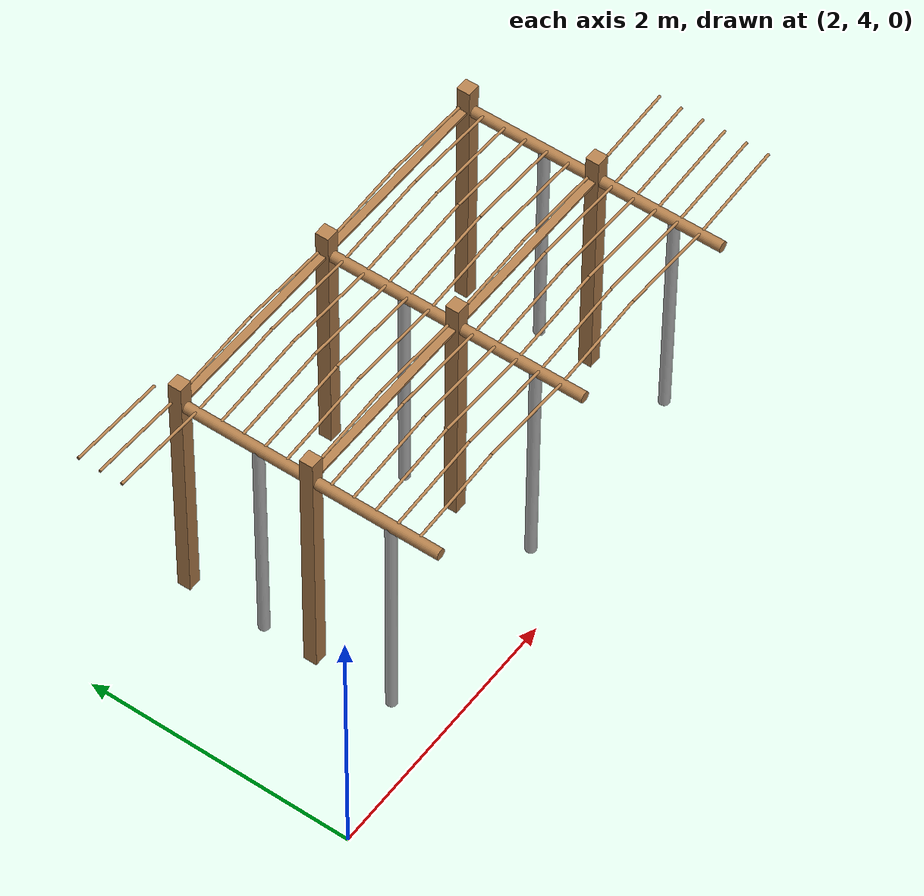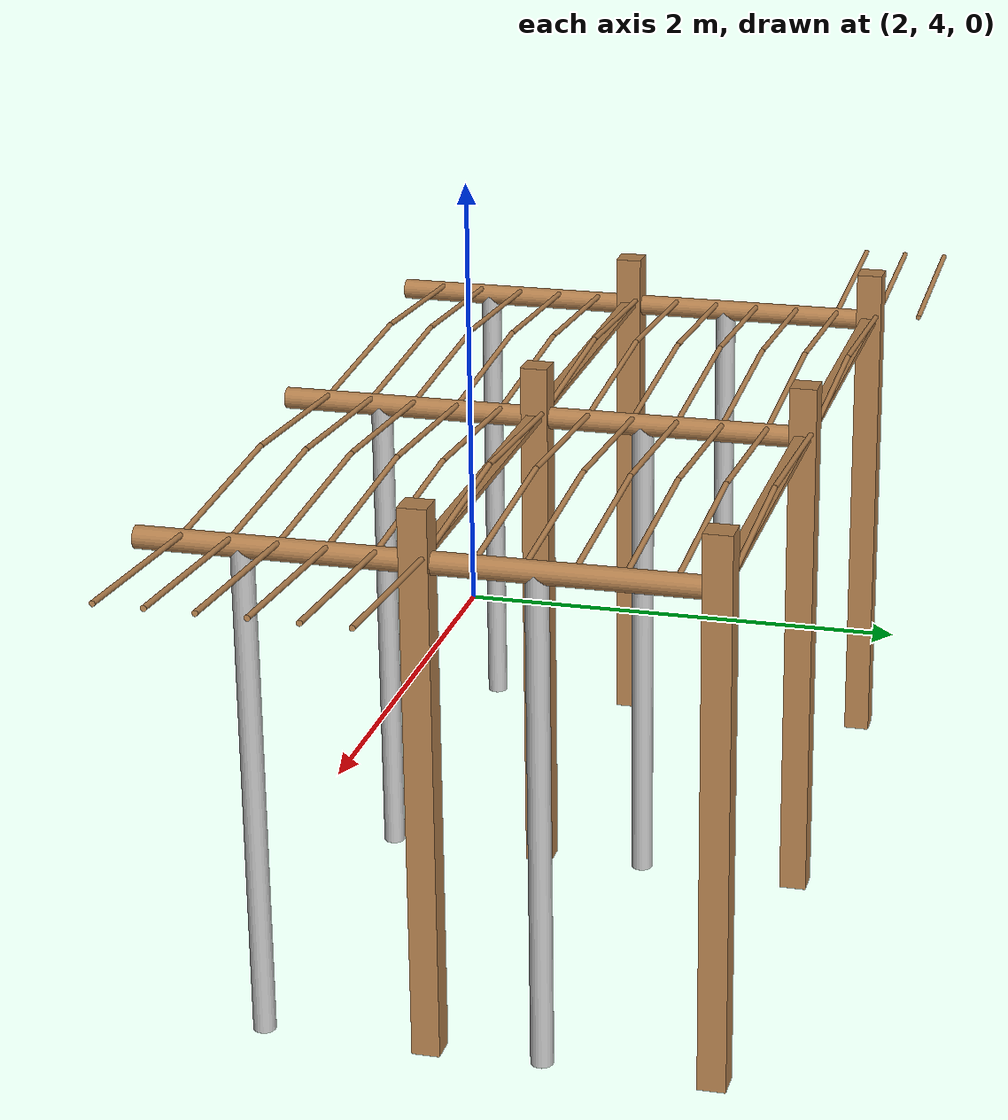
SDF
<sdf version="1.4">
 <model name="pergola">
  <include><name>post_27</name><pose>3.0 5.0 0 0 0 0</pose><uri>model://post</uri></include>
  <include><name>post_28</name><pose>3.0 6.0 0 0 0 0</pose><uri>model://post</uri></include>
  <include><name>post_38</name><pose>4.5 5.0 0 0 0 0</pose><uri>model://post</uri></include>
  <include><name>post_39</name><pose>4.5 6.0 0 0 0 0</pose><uri>model://post</uri></include>
  <include><name>post_49</name><pose>6.0 5.0 0 0 0 0</pose><uri>model://post</uri></include>
  <include><name>post_50</name><pose>6.0 6.0 0 0 0 0</pose><uri>model://post</uri></include>
  <link name="beam_27">
   <pose>3.75 5.0 1.81 0 0 0</pose>
   <collision name="collision"><geometry><box><size>1.5 0.06 0.02</size></box></geometry></collision>
   <visual name="visual">
    <geometry><box><size>1.5 0.06 0.02</size></box></geometry>
    <material><script><name>Gazebo/Wood</name></script></material>
   </visual>
   <inertial>
    <mass>5</mass>
    <inertia>
     <ixx>0.0016666666666666668</ixx>
     <ixy>0.0</ixy>
     <ixz>0.0</ixz>
     <iyy>0.9390000000000001</iyy>
     <iyz>0.0</iyz>
     <izz>0.9376666666666665</izz>
    </inertia>
   </inertial>
  </link>
  <link name="beam_28">
   <pose>3.75 6.0 1.81 0 0 0</pose>
   <collision name="collision"><geometry><box><size>1.5 0.06 0.02</size></box></geometry></collision>
   <visual name="visual">
    <geometry><box><size>1.5 0.06 0.02</size></box></geometry>
    <material><script><name>Gazebo/Wood</name></script></material>
   </visual>
   <inertial>
    <mass>5</mass>
    <inertia>
     <ixx>0.0016666666666666668</ixx>
     <ixy>0.0</ixy>
     <ixz>0.0</ixz>
     <iyy>0.9390000000000001</iyy>
     <iyz>0.0</iyz>
     <izz>0.9376666666666665</izz>
    </inertia>
   </inertial>
  </link>
  <link name="beam_38">
   <pose>5.25 5.0 1.81 0 0 0</pose>
   <collision name="collision"><geometry><box><size>1.5 0.06 0.02</size></box></geometry></collision>
   <visual name="visual">
    <geometry><box><size>1.5 0.06 0.02</size></box></geometry>
    <material><script><name>Gazebo/Wood</name></script></material>
   </visual>
   <inertial>
    <mass>5</mass>
    <inertia>
     <ixx>0.0016666666666666668</ixx>
     <ixy>0.0</ixy>
     <ixz>0.0</ixz>
     <iyy>0.9390000000000001</iyy>
     <iyz>0.0</iyz>
     <izz>0.9376666666666665</izz>
    </inertia>
   </inertial>
  </link>
  <link name="beam_39">
   <pose>5.25 6.0 1.81 0 0 0</pose>
   <collision name="collision"><geometry><box><size>1.5 0.06 0.02</size></box></geometry></collision>
   <visual name="visual">
    <geometry><box><size>1.5 0.06 0.02</size></box></geometry>
    <material><script><name>Gazebo/Wood</name></script></material>
   </visual>
   <inertial>
    <mass>5</mass>
    <inertia>
     <ixx>0.0016666666666666668</ixx>
     <ixy>0.0</ixy>
     <ixz>0.0</ixz>
     <iyy>0.9390000000000001</iyy>
     <iyz>0.0</iyz>
     <izz>0.9376666666666665</izz>
    </inertia>
   </inertial>
  </link>
  <include><name>tree_24</name><pose>3.0 4.4 0 0 0 0</pose><uri>model://tree_trunk</uri></include>
  <include><name>tree_25</name><pose>3.0 5.4 0 0 0 0</pose><uri>model://tree_trunk</uri></include>
  <include><name>tree_34</name><pose>4.5 4.4 0 0 0 0</pose><uri>model://tree_trunk</uri></include>
  <include><name>tree_35</name><pose>4.5 5.4 0 0 0 0</pose><uri>model://tree_trunk</uri></include>
  <include><name>tree_44</name><pose>6.0 4.4 0 0 0 0</pose><uri>model://tree_trunk</uri></include>
  <include><name>tree_45</name><pose>6.0 5.4 0 0 0 0</pose><uri>model://tree_trunk</uri></include>
  <link name="baseBranch_24">
   <pose>3.0 4.5 1.8 1.5707963267948966 0 0</pose>
   <collision name="collision">
    <geometry><cylinder><radius>0.04</radius><length>0.94</length></cylinder></geometry>
   </collision>
   <visual name="visual">
    <geometry><cylinder><radius>0.04</radius><length>0.94</length></cylinder></geometry>
    <material><script><name>Gazebo/WoodFloor</name></script></material>
   </visual>
   <inertial>
    <mass>10</mass>
    <inertia>
     <ixx>0.7403333333333334</ixx>
     <ixy>0.0</ixy>
     <ixz>0.0</ixz>
     <iyy>0.7403333333333334</iyy>
     <iyz>0.0</iyz>
     <izz>0.008</izz>
    </inertia>
   </inertial>
  </link>
  <link name="baseBranch_25">
   <pose>3.0 5.5 1.8 1.5707963267948966 0 0</pose>
   <collision name="collision">
    <geometry><cylinder><radius>0.04</radius><length>0.94</length></cylinder></geometry>
   </collision>
   <visual name="visual">
    <geometry><cylinder><radius>0.04</radius><length>0.94</length></cylinder></geometry>
    <material><script><name>Gazebo/WoodFloor</name></script></material>
   </visual>
   <inertial>
    <mass>10</mass>
    <inertia>
     <ixx>0.7403333333333334</ixx>
     <ixy>0.0</ixy>
     <ixz>0.0</ixz>
     <iyy>0.7403333333333334</iyy>
     <iyz>0.0</iyz>
     <izz>0.008</izz>
    </inertia>
   </inertial>
  </link>
  <link name="baseBranch_34">
   <pose>4.5 4.5 1.8 1.5707963267948966 0 0</pose>
   <collision name="collision">
    <geometry><cylinder><radius>0.04</radius><length>0.94</length></cylinder></geometry>
   </collision>
   <visual name="visual">
    <geometry><cylinder><radius>0.04</radius><length>0.94</length></cylinder></geometry>
    <material><script><name>Gazebo/WoodFloor</name></script></material>
   </visual>
   <inertial>
    <mass>10</mass>
    <inertia>
     <ixx>0.7403333333333334</ixx>
     <ixy>0.0</ixy>
     <ixz>0.0</ixz>
     <iyy>0.7403333333333334</iyy>
     <iyz>0.0</iyz>
     <izz>0.008</izz>
    </inertia>
   </inertial>
  </link>
  <link name="baseBranch_35">
   <pose>4.5 5.5 1.8 1.5707963267948966 0 0</pose>
   <collision name="collision">
    <geometry><cylinder><radius>0.04</radius><length>0.94</length></cylinder></geometry>
   </collision>
   <visual name="visual">
    <geometry><cylinder><radius>0.04</radius><length>0.94</length></cylinder></geometry>
    <material><script><name>Gazebo/WoodFloor</name></script></material>
   </visual>
   <inertial>
    <mass>10</mass>
    <inertia>
     <ixx>0.7403333333333334</ixx>
     <ixy>0.0</ixy>
     <ixz>0.0</ixz>
     <iyy>0.7403333333333334</iyy>
     <iyz>0.0</iyz>
     <izz>0.008</izz>
    </inertia>
   </inertial>
  </link>
  <link name="baseBranch_44">
   <pose>6.0 4.5 1.8 1.5707963267948966 0 0</pose>
   <collision name="collision">
    <geometry><cylinder><radius>0.04</radius><length>0.94</length></cylinder></geometry>
   </collision>
   <visual name="visual">
    <geometry><cylinder><radius>0.04</radius><length>0.94</length></cylinder></geometry>
    <material><script><name>Gazebo/WoodFloor</name></script></material>
   </visual>
   <inertial>
    <mass>10</mass>
    <inertia>
     <ixx>0.7403333333333334</ixx>
     <ixy>0.0</ixy>
     <ixz>0.0</ixz>
     <iyy>0.7403333333333334</iyy>
     <iyz>0.0</iyz>
     <izz>0.008</izz>
    </inertia>
   </inertial>
  </link>
  <link name="baseBranch_45">
   <pose>6.0 5.5 1.8 1.5707963267948966 0 0</pose>
   <collision name="collision">
    <geometry><cylinder><radius>0.04</radius><length>0.94</length></cylinder></geometry>
   </collision>
   <visual name="visual">
    <geometry><cylinder><radius>0.04</radius><length>0.94</length></cylinder></geometry>
    <material><script><name>Gazebo/WoodFloor</name></script></material>
   </visual>
   <inertial>
    <mass>10</mass>
    <inertia>
     <ixx>0.7403333333333334</ixx>
     <ixy>0.0</ixy>
     <ixz>0.0</ixz>
     <iyy>0.7403333333333334</iyy>
     <iyz>0.0</iyz>
     <izz>0.008</izz>
    </inertia>
   </inertial>
  </link>
  <link name="vine_191">
   <pose>2.625 5.863333333333333 1.85 0 -1.5042281630190728 0</pose>
   <collision name="collision">
    <geometry><cylinder><radius>0.01</radius><length>0.7516648189186453</length></cylinder></geometry>
   </collision>
   <visual name="visual">
    <geometry><cylinder><radius>0.01</radius><length>0.7516648189186453</length></cylinder></geometry>
    <material><script><name>Gazebo/WoodFloor</name></script></material>
   </visual>
   <inertial>
    <mass>5</mass>
    <inertia>
     <ixx>0.23554166666666657</ixx>
     <ixy>0.0</ixy>
     <ixz>0.0</ixz>
     <iyy>0.23554166666666657</iyy>
     <iyz>0.0</iyz>
     <izz>0.00025</izz>
    </inertia>
   </inertial>
  </link>
  <link name="vine_193">
   <pose>2.625 6.03 1.85 0 -1.5042281630190728 0</pose>
   <collision name="collision">
    <geometry><cylinder><radius>0.01</radius><length>0.7516648189186453</length></cylinder></geometry>
   </collision>
   <visual name="visual">
    <geometry><cylinder><radius>0.01</radius><length>0.7516648189186453</length></cylinder></geometry>
    <material><script><name>Gazebo/WoodFloor</name></script></material>
   </visual>
   <inertial>
    <mass>5</mass>
    <inertia>
     <ixx>0.23554166666666657</ixx>
     <ixy>0.0</ixy>
     <ixz>0.0</ixz>
     <iyy>0.23554166666666657</iyy>
     <iyz>0.0</iyz>
     <izz>0.00025</izz>
    </inertia>
   </inertial>
  </link>
  <link name="vine_195">
   <pose>2.625 6.196666666666666 1.85 0 -1.5042281630190728 0</pose>
   <collision name="collision">
    <geometry><cylinder><radius>0.01</radius><length>0.7516648189186453</length></cylinder></geometry>
   </collision>
   <visual name="visual">
    <geometry><cylinder><radius>0.01</radius><length>0.7516648189186453</length></cylinder></geometry>
    <material><script><name>Gazebo/WoodFloor</name></script></material>
   </visual>
   <inertial>
    <mass>5</mass>
    <inertia>
     <ixx>0.23554166666666657</ixx>
     <ixy>0.0</ixy>
     <ixz>0.0</ixz>
     <iyy>0.23554166666666657</iyy>
     <iyz>0.0</iyz>
     <izz>0.00025</izz>
    </inertia>
   </inertial>
  </link>
  <link name="vine_290">
   <pose>3.375 4.196666666666666 1.85 0 1.5042281630190728 0</pose>
   <collision name="collision">
    <geometry><cylinder><radius>0.01</radius><length>0.7516648189186453</length></cylinder></geometry>
   </collision>
   <visual name="visual">
    <geometry><cylinder><radius>0.01</radius><length>0.7516648189186453</length></cylinder></geometry>
    <material><script><name>Gazebo/WoodFloor</name></script></material>
   </visual>
   <inertial>
    <mass>5</mass>
    <inertia>
     <ixx>0.23554166666666657</ixx>
     <ixy>0.0</ixy>
     <ixz>0.0</ixz>
     <iyy>0.23554166666666657</iyy>
     <iyz>0.0</iyz>
     <izz>0.00025</izz>
    </inertia>
   </inertial>
  </link>
  <link name="vine_291">
   <pose>4.125 4.196666666666666 1.85 0 -1.5042281630190728 0</pose>
   <collision name="collision">
    <geometry><cylinder><radius>0.01</radius><length>0.7516648189186453</length></cylinder></geometry>
   </collision>
   <visual name="visual">
    <geometry><cylinder><radius>0.01</radius><length>0.7516648189186453</length></cylinder></geometry>
    <material><script><name>Gazebo/WoodFloor</name></script></material>
   </visual>
   <inertial>
    <mass>5</mass>
    <inertia>
     <ixx>0.23554166666666657</ixx>
     <ixy>0.0</ixy>
     <ixz>0.0</ixz>
     <iyy>0.23554166666666657</iyy>
     <iyz>0.0</iyz>
     <izz>0.00025</izz>
    </inertia>
   </inertial>
  </link>
  <link name="vine_292">
   <pose>3.375 4.363333333333333 1.85 0 1.5042281630190728 0</pose>
   <collision name="collision">
    <geometry><cylinder><radius>0.01</radius><length>0.7516648189186453</length></cylinder></geometry>
   </collision>
   <visual name="visual">
    <geometry><cylinder><radius>0.01</radius><length>0.7516648189186453</length></cylinder></geometry>
    <material><script><name>Gazebo/WoodFloor</name></script></material>
   </visual>
   <inertial>
    <mass>5</mass>
    <inertia>
     <ixx>0.23554166666666657</ixx>
     <ixy>0.0</ixy>
     <ixz>0.0</ixz>
     <iyy>0.23554166666666657</iyy>
     <iyz>0.0</iyz>
     <izz>0.00025</izz>
    </inertia>
   </inertial>
  </link>
  <link name="vine_293">
   <pose>4.125 4.363333333333333 1.85 0 -1.5042281630190728 0</pose>
   <collision name="collision">
    <geometry><cylinder><radius>0.01</radius><length>0.7516648189186453</length></cylinder></geometry>
   </collision>
   <visual name="visual">
    <geometry><cylinder><radius>0.01</radius><length>0.7516648189186453</length></cylinder></geometry>
    <material><script><name>Gazebo/WoodFloor</name></script></material>
   </visual>
   <inertial>
    <mass>5</mass>
    <inertia>
     <ixx>0.23554166666666657</ixx>
     <ixy>0.0</ixy>
     <ixz>0.0</ixz>
     <iyy>0.23554166666666657</iyy>
     <iyz>0.0</iyz>
     <izz>0.00025</izz>
    </inertia>
   </inertial>
  </link>
  <link name="vine_294">
   <pose>3.375 4.53 1.85 0 1.5042281630190728 0</pose>
   <collision name="collision">
    <geometry><cylinder><radius>0.01</radius><length>0.7516648189186453</length></cylinder></geometry>
   </collision>
   <visual name="visual">
    <geometry><cylinder><radius>0.01</radius><length>0.7516648189186453</length></cylinder></geometry>
    <material><script><name>Gazebo/WoodFloor</name></script></material>
   </visual>
   <inertial>
    <mass>5</mass>
    <inertia>
     <ixx>0.23554166666666657</ixx>
     <ixy>0.0</ixy>
     <ixz>0.0</ixz>
     <iyy>0.23554166666666657</iyy>
     <iyz>0.0</iyz>
     <izz>0.00025</izz>
    </inertia>
   </inertial>
  </link>
  <link name="vine_295">
   <pose>4.125 4.53 1.85 0 -1.5042281630190728 0</pose>
   <collision name="collision">
    <geometry><cylinder><radius>0.01</radius><length>0.7516648189186453</length></cylinder></geometry>
   </collision>
   <visual name="visual">
    <geometry><cylinder><radius>0.01</radius><length>0.7516648189186453</length></cylinder></geometry>
    <material><script><name>Gazebo/WoodFloor</name></script></material>
   </visual>
   <inertial>
    <mass>5</mass>
    <inertia>
     <ixx>0.23554166666666657</ixx>
     <ixy>0.0</ixy>
     <ixz>0.0</ixz>
     <iyy>0.23554166666666657</iyy>
     <iyz>0.0</iyz>
     <izz>0.00025</izz>
    </inertia>
   </inertial>
  </link>
  <link name="vine_296">
   <pose>3.375 4.696666666666666 1.85 0 1.5042281630190728 0</pose>
   <collision name="collision">
    <geometry><cylinder><radius>0.01</radius><length>0.7516648189186453</length></cylinder></geometry>
   </collision>
   <visual name="visual">
    <geometry><cylinder><radius>0.01</radius><length>0.7516648189186453</length></cylinder></geometry>
    <material><script><name>Gazebo/WoodFloor</name></script></material>
   </visual>
   <inertial>
    <mass>5</mass>
    <inertia>
     <ixx>0.23554166666666657</ixx>
     <ixy>0.0</ixy>
     <ixz>0.0</ixz>
     <iyy>0.23554166666666657</iyy>
     <iyz>0.0</iyz>
     <izz>0.00025</izz>
    </inertia>
   </inertial>
  </link>
  <link name="vine_297">
   <pose>4.125 4.696666666666666 1.85 0 -1.5042281630190728 0</pose>
   <collision name="collision">
    <geometry><cylinder><radius>0.01</radius><length>0.7516648189186453</length></cylinder></geometry>
   </collision>
   <visual name="visual">
    <geometry><cylinder><radius>0.01</radius><length>0.7516648189186453</length></cylinder></geometry>
    <material><script><name>Gazebo/WoodFloor</name></script></material>
   </visual>
   <inertial>
    <mass>5</mass>
    <inertia>
     <ixx>0.23554166666666657</ixx>
     <ixy>0.0</ixy>
     <ixz>0.0</ixz>
     <iyy>0.23554166666666657</iyy>
     <iyz>0.0</iyz>
     <izz>0.00025</izz>
    </inertia>
   </inertial>
  </link>
  <link name="vine_298">
   <pose>3.375 4.863333333333333 1.85 0 1.5042281630190728 0</pose>
   <collision name="collision">
    <geometry><cylinder><radius>0.01</radius><length>0.7516648189186453</length></cylinder></geometry>
   </collision>
   <visual name="visual">
    <geometry><cylinder><radius>0.01</radius><length>0.7516648189186453</length></cylinder></geometry>
    <material><script><name>Gazebo/WoodFloor</name></script></material>
   </visual>
   <inertial>
    <mass>5</mass>
    <inertia>
     <ixx>0.23554166666666657</ixx>
     <ixy>0.0</ixy>
     <ixz>0.0</ixz>
     <iyy>0.23554166666666657</iyy>
     <iyz>0.0</iyz>
     <izz>0.00025</izz>
    </inertia>
   </inertial>
  </link>
  <link name="vine_299">
   <pose>4.125 4.863333333333333 1.85 0 -1.5042281630190728 0</pose>
   <collision name="collision">
    <geometry><cylinder><radius>0.01</radius><length>0.7516648189186453</length></cylinder></geometry>
   </collision>
   <visual name="visual">
    <geometry><cylinder><radius>0.01</radius><length>0.7516648189186453</length></cylinder></geometry>
    <material><script><name>Gazebo/WoodFloor</name></script></material>
   </visual>
   <inertial>
    <mass>5</mass>
    <inertia>
     <ixx>0.23554166666666657</ixx>
     <ixy>0.0</ixy>
     <ixz>0.0</ixz>
     <iyy>0.23554166666666657</iyy>
     <iyz>0.0</iyz>
     <izz>0.00025</izz>
    </inertia>
   </inertial>
  </link>
  <link name="vine_300">
   <pose>3.375 5.03 1.85 0 1.5042281630190728 0</pose>
   <collision name="collision">
    <geometry><cylinder><radius>0.01</radius><length>0.7516648189186453</length></cylinder></geometry>
   </collision>
   <visual name="visual">
    <geometry><cylinder><radius>0.01</radius><length>0.7516648189186453</length></cylinder></geometry>
    <material><script><name>Gazebo/WoodFloor</name></script></material>
   </visual>
   <inertial>
    <mass>5</mass>
    <inertia>
     <ixx>0.23554166666666657</ixx>
     <ixy>0.0</ixy>
     <ixz>0.0</ixz>
     <iyy>0.23554166666666657</iyy>
     <iyz>0.0</iyz>
     <izz>0.00025</izz>
    </inertia>
   </inertial>
  </link>
  <link name="vine_301">
   <pose>4.125 5.03 1.85 0 -1.5042281630190728 0</pose>
   <collision name="collision">
    <geometry><cylinder><radius>0.01</radius><length>0.7516648189186453</length></cylinder></geometry>
   </collision>
   <visual name="visual">
    <geometry><cylinder><radius>0.01</radius><length>0.7516648189186453</length></cylinder></geometry>
    <material><script><name>Gazebo/WoodFloor</name></script></material>
   </visual>
   <inertial>
    <mass>5</mass>
    <inertia>
     <ixx>0.23554166666666657</ixx>
     <ixy>0.0</ixy>
     <ixz>0.0</ixz>
     <iyy>0.23554166666666657</iyy>
     <iyz>0.0</iyz>
     <izz>0.00025</izz>
    </inertia>
   </inertial>
  </link>
  <link name="vine_302">
   <pose>3.375 5.196666666666666 1.85 0 1.5042281630190728 0</pose>
   <collision name="collision">
    <geometry><cylinder><radius>0.01</radius><length>0.7516648189186453</length></cylinder></geometry>
   </collision>
   <visual name="visual">
    <geometry><cylinder><radius>0.01</radius><length>0.7516648189186453</length></cylinder></geometry>
    <material><script><name>Gazebo/WoodFloor</name></script></material>
   </visual>
   <inertial>
    <mass>5</mass>
    <inertia>
     <ixx>0.23554166666666657</ixx>
     <ixy>0.0</ixy>
     <ixz>0.0</ixz>
     <iyy>0.23554166666666657</iyy>
     <iyz>0.0</iyz>
     <izz>0.00025</izz>
    </inertia>
   </inertial>
  </link>
  <link name="vine_303">
   <pose>4.125 5.196666666666666 1.85 0 -1.5042281630190728 0</pose>
   <collision name="collision">
    <geometry><cylinder><radius>0.01</radius><length>0.7516648189186453</length></cylinder></geometry>
   </collision>
   <visual name="visual">
    <geometry><cylinder><radius>0.01</radius><length>0.7516648189186453</length></cylinder></geometry>
    <material><script><name>Gazebo/WoodFloor</name></script></material>
   </visual>
   <inertial>
    <mass>5</mass>
    <inertia>
     <ixx>0.23554166666666657</ixx>
     <ixy>0.0</ixy>
     <ixz>0.0</ixz>
     <iyy>0.23554166666666657</iyy>
     <iyz>0.0</iyz>
     <izz>0.00025</izz>
    </inertia>
   </inertial>
  </link>
  <link name="vine_304">
   <pose>3.375 5.363333333333333 1.85 0 1.5042281630190728 0</pose>
   <collision name="collision">
    <geometry><cylinder><radius>0.01</radius><length>0.7516648189186453</length></cylinder></geometry>
   </collision>
   <visual name="visual">
    <geometry><cylinder><radius>0.01</radius><length>0.7516648189186453</length></cylinder></geometry>
    <material><script><name>Gazebo/WoodFloor</name></script></material>
   </visual>
   <inertial>
    <mass>5</mass>
    <inertia>
     <ixx>0.23554166666666657</ixx>
     <ixy>0.0</ixy>
     <ixz>0.0</ixz>
     <iyy>0.23554166666666657</iyy>
     <iyz>0.0</iyz>
     <izz>0.00025</izz>
    </inertia>
   </inertial>
  </link>
  <link name="vine_305">
   <pose>4.125 5.363333333333333 1.85 0 -1.5042281630190728 0</pose>
   <collision name="collision">
    <geometry><cylinder><radius>0.01</radius><length>0.7516648189186453</length></cylinder></geometry>
   </collision>
   <visual name="visual">
    <geometry><cylinder><radius>0.01</radius><length>0.7516648189186453</length></cylinder></geometry>
    <material><script><name>Gazebo/WoodFloor</name></script></material>
   </visual>
   <inertial>
    <mass>5</mass>
    <inertia>
     <ixx>0.23554166666666657</ixx>
     <ixy>0.0</ixy>
     <ixz>0.0</ixz>
     <iyy>0.23554166666666657</iyy>
     <iyz>0.0</iyz>
     <izz>0.00025</izz>
    </inertia>
   </inertial>
  </link>
  <link name="vine_306">
   <pose>3.375 5.53 1.85 0 1.5042281630190728 0</pose>
   <collision name="collision">
    <geometry><cylinder><radius>0.01</radius><length>0.7516648189186453</length></cylinder></geometry>
   </collision>
   <visual name="visual">
    <geometry><cylinder><radius>0.01</radius><length>0.7516648189186453</length></cylinder></geometry>
    <material><script><name>Gazebo/WoodFloor</name></script></material>
   </visual>
   <inertial>
    <mass>5</mass>
    <inertia>
     <ixx>0.23554166666666657</ixx>
     <ixy>0.0</ixy>
     <ixz>0.0</ixz>
     <iyy>0.23554166666666657</iyy>
     <iyz>0.0</iyz>
     <izz>0.00025</izz>
    </inertia>
   </inertial>
  </link>
  <link name="vine_307">
   <pose>4.125 5.53 1.85 0 -1.5042281630190728 0</pose>
   <collision name="collision">
    <geometry><cylinder><radius>0.01</radius><length>0.7516648189186453</length></cylinder></geometry>
   </collision>
   <visual name="visual">
    <geometry><cylinder><radius>0.01</radius><length>0.7516648189186453</length></cylinder></geometry>
    <material><script><name>Gazebo/WoodFloor</name></script></material>
   </visual>
   <inertial>
    <mass>5</mass>
    <inertia>
     <ixx>0.23554166666666657</ixx>
     <ixy>0.0</ixy>
     <ixz>0.0</ixz>
     <iyy>0.23554166666666657</iyy>
     <iyz>0.0</iyz>
     <izz>0.00025</izz>
    </inertia>
   </inertial>
  </link>
  <link name="vine_308">
   <pose>3.375 5.696666666666666 1.85 0 1.5042281630190728 0</pose>
   <collision name="collision">
    <geometry><cylinder><radius>0.01</radius><length>0.7516648189186453</length></cylinder></geometry>
   </collision>
   <visual name="visual">
    <geometry><cylinder><radius>0.01</radius><length>0.7516648189186453</length></cylinder></geometry>
    <material><script><name>Gazebo/WoodFloor</name></script></material>
   </visual>
   <inertial>
    <mass>5</mass>
    <inertia>
     <ixx>0.23554166666666657</ixx>
     <ixy>0.0</ixy>
     <ixz>0.0</ixz>
     <iyy>0.23554166666666657</iyy>
     <iyz>0.0</iyz>
     <izz>0.00025</izz>
    </inertia>
   </inertial>
  </link>
  <link name="vine_309">
   <pose>4.125 5.696666666666666 1.85 0 -1.5042281630190728 0</pose>
   <collision name="collision">
    <geometry><cylinder><radius>0.01</radius><length>0.7516648189186453</length></cylinder></geometry>
   </collision>
   <visual name="visual">
    <geometry><cylinder><radius>0.01</radius><length>0.7516648189186453</length></cylinder></geometry>
    <material><script><name>Gazebo/WoodFloor</name></script></material>
   </visual>
   <inertial>
    <mass>5</mass>
    <inertia>
     <ixx>0.23554166666666657</ixx>
     <ixy>0.0</ixy>
     <ixz>0.0</ixz>
     <iyy>0.23554166666666657</iyy>
     <iyz>0.0</iyz>
     <izz>0.00025</izz>
    </inertia>
   </inertial>
  </link>
  <link name="vine_310">
   <pose>3.375 5.863333333333333 1.85 0 1.5042281630190728 0</pose>
   <collision name="collision">
    <geometry><cylinder><radius>0.01</radius><length>0.7516648189186453</length></cylinder></geometry>
   </collision>
   <visual name="visual">
    <geometry><cylinder><radius>0.01</radius><length>0.7516648189186453</length></cylinder></geometry>
    <material><script><name>Gazebo/WoodFloor</name></script></material>
   </visual>
   <inertial>
    <mass>5</mass>
    <inertia>
     <ixx>0.23554166666666657</ixx>
     <ixy>0.0</ixy>
     <ixz>0.0</ixz>
     <iyy>0.23554166666666657</iyy>
     <iyz>0.0</iyz>
     <izz>0.00025</izz>
    </inertia>
   </inertial>
  </link>
  <link name="vine_311">
   <pose>4.125 5.863333333333333 1.85 0 -1.5042281630190728 0</pose>
   <collision name="collision">
    <geometry><cylinder><radius>0.01</radius><length>0.7516648189186453</length></cylinder></geometry>
   </collision>
   <visual name="visual">
    <geometry><cylinder><radius>0.01</radius><length>0.7516648189186453</length></cylinder></geometry>
    <material><script><name>Gazebo/WoodFloor</name></script></material>
   </visual>
   <inertial>
    <mass>5</mass>
    <inertia>
     <ixx>0.23554166666666657</ixx>
     <ixy>0.0</ixy>
     <ixz>0.0</ixz>
     <iyy>0.23554166666666657</iyy>
     <iyz>0.0</iyz>
     <izz>0.00025</izz>
    </inertia>
   </inertial>
  </link>
  <link name="vine_312">
   <pose>3.375 6.03 1.85 0 1.5042281630190728 0</pose>
   <collision name="collision">
    <geometry><cylinder><radius>0.01</radius><length>0.7516648189186453</length></cylinder></geometry>
   </collision>
   <visual name="visual">
    <geometry><cylinder><radius>0.01</radius><length>0.7516648189186453</length></cylinder></geometry>
    <material><script><name>Gazebo/WoodFloor</name></script></material>
   </visual>
   <inertial>
    <mass>5</mass>
    <inertia>
     <ixx>0.23554166666666657</ixx>
     <ixy>0.0</ixy>
     <ixz>0.0</ixz>
     <iyy>0.23554166666666657</iyy>
     <iyz>0.0</iyz>
     <izz>0.00025</izz>
    </inertia>
   </inertial>
  </link>
  <link name="vine_313">
   <pose>4.125 6.03 1.85 0 -1.5042281630190728 0</pose>
   <collision name="collision">
    <geometry><cylinder><radius>0.01</radius><length>0.7516648189186453</length></cylinder></geometry>
   </collision>
   <visual name="visual">
    <geometry><cylinder><radius>0.01</radius><length>0.7516648189186453</length></cylinder></geometry>
    <material><script><name>Gazebo/WoodFloor</name></script></material>
   </visual>
   <inertial>
    <mass>5</mass>
    <inertia>
     <ixx>0.23554166666666657</ixx>
     <ixy>0.0</ixy>
     <ixz>0.0</ixz>
     <iyy>0.23554166666666657</iyy>
     <iyz>0.0</iyz>
     <izz>0.00025</izz>
    </inertia>
   </inertial>
  </link>
  <link name="vine_410">
   <pose>4.875 4.196666666666666 1.85 0 1.5042281630190728 0</pose>
   <collision name="collision">
    <geometry><cylinder><radius>0.01</radius><length>0.7516648189186453</length></cylinder></geometry>
   </collision>
   <visual name="visual">
    <geometry><cylinder><radius>0.01</radius><length>0.7516648189186453</length></cylinder></geometry>
    <material><script><name>Gazebo/WoodFloor</name></script></material>
   </visual>
   <inertial>
    <mass>5</mass>
    <inertia>
     <ixx>0.23554166666666657</ixx>
     <ixy>0.0</ixy>
     <ixz>0.0</ixz>
     <iyy>0.23554166666666657</iyy>
     <iyz>0.0</iyz>
     <izz>0.00025</izz>
    </inertia>
   </inertial>
  </link>
  <link name="vine_411">
   <pose>5.625 4.196666666666666 1.85 0 -1.5042281630190728 0</pose>
   <collision name="collision">
    <geometry><cylinder><radius>0.01</radius><length>0.7516648189186453</length></cylinder></geometry>
   </collision>
   <visual name="visual">
    <geometry><cylinder><radius>0.01</radius><length>0.7516648189186453</length></cylinder></geometry>
    <material><script><name>Gazebo/WoodFloor</name></script></material>
   </visual>
   <inertial>
    <mass>5</mass>
    <inertia>
     <ixx>0.23554166666666657</ixx>
     <ixy>0.0</ixy>
     <ixz>0.0</ixz>
     <iyy>0.23554166666666657</iyy>
     <iyz>0.0</iyz>
     <izz>0.00025</izz>
    </inertia>
   </inertial>
  </link>
  <link name="vine_412">
   <pose>4.875 4.363333333333333 1.85 0 1.5042281630190728 0</pose>
   <collision name="collision">
    <geometry><cylinder><radius>0.01</radius><length>0.7516648189186453</length></cylinder></geometry>
   </collision>
   <visual name="visual">
    <geometry><cylinder><radius>0.01</radius><length>0.7516648189186453</length></cylinder></geometry>
    <material><script><name>Gazebo/WoodFloor</name></script></material>
   </visual>
   <inertial>
    <mass>5</mass>
    <inertia>
     <ixx>0.23554166666666657</ixx>
     <ixy>0.0</ixy>
     <ixz>0.0</ixz>
     <iyy>0.23554166666666657</iyy>
     <iyz>0.0</iyz>
     <izz>0.00025</izz>
    </inertia>
   </inertial>
  </link>
  <link name="vine_413">
   <pose>5.625 4.363333333333333 1.85 0 -1.5042281630190728 0</pose>
   <collision name="collision">
    <geometry><cylinder><radius>0.01</radius><length>0.7516648189186453</length></cylinder></geometry>
   </collision>
   <visual name="visual">
    <geometry><cylinder><radius>0.01</radius><length>0.7516648189186453</length></cylinder></geometry>
    <material><script><name>Gazebo/WoodFloor</name></script></material>
   </visual>
   <inertial>
    <mass>5</mass>
    <inertia>
     <ixx>0.23554166666666657</ixx>
     <ixy>0.0</ixy>
     <ixz>0.0</ixz>
     <iyy>0.23554166666666657</iyy>
     <iyz>0.0</iyz>
     <izz>0.00025</izz>
    </inertia>
   </inertial>
  </link>
  <link name="vine_414">
   <pose>4.875 4.53 1.85 0 1.5042281630190728 0</pose>
   <collision name="collision">
    <geometry><cylinder><radius>0.01</radius><length>0.7516648189186453</length></cylinder></geometry>
   </collision>
   <visual name="visual">
    <geometry><cylinder><radius>0.01</radius><length>0.7516648189186453</length></cylinder></geometry>
    <material><script><name>Gazebo/WoodFloor</name></script></material>
   </visual>
   <inertial>
    <mass>5</mass>
    <inertia>
     <ixx>0.23554166666666657</ixx>
     <ixy>0.0</ixy>
     <ixz>0.0</ixz>
     <iyy>0.23554166666666657</iyy>
     <iyz>0.0</iyz>
     <izz>0.00025</izz>
    </inertia>
   </inertial>
  </link>
  <link name="vine_415">
   <pose>5.625 4.53 1.85 0 -1.5042281630190728 0</pose>
   <collision name="collision">
    <geometry><cylinder><radius>0.01</radius><length>0.7516648189186453</length></cylinder></geometry>
   </collision>
   <visual name="visual">
    <geometry><cylinder><radius>0.01</radius><length>0.7516648189186453</length></cylinder></geometry>
    <material><script><name>Gazebo/WoodFloor</name></script></material>
   </visual>
   <inertial>
    <mass>5</mass>
    <inertia>
     <ixx>0.23554166666666657</ixx>
     <ixy>0.0</ixy>
     <ixz>0.0</ixz>
     <iyy>0.23554166666666657</iyy>
     <iyz>0.0</iyz>
     <izz>0.00025</izz>
    </inertia>
   </inertial>
  </link>
  <link name="vine_416">
   <pose>4.875 4.696666666666666 1.85 0 1.5042281630190728 0</pose>
   <collision name="collision">
    <geometry><cylinder><radius>0.01</radius><length>0.7516648189186453</length></cylinder></geometry>
   </collision>
   <visual name="visual">
    <geometry><cylinder><radius>0.01</radius><length>0.7516648189186453</length></cylinder></geometry>
    <material><script><name>Gazebo/WoodFloor</name></script></material>
   </visual>
   <inertial>
    <mass>5</mass>
    <inertia>
     <ixx>0.23554166666666657</ixx>
     <ixy>0.0</ixy>
     <ixz>0.0</ixz>
     <iyy>0.23554166666666657</iyy>
     <iyz>0.0</iyz>
     <izz>0.00025</izz>
    </inertia>
   </inertial>
  </link>
  <link name="vine_417">
   <pose>5.625 4.696666666666666 1.85 0 -1.5042281630190728 0</pose>
   <collision name="collision">
    <geometry><cylinder><radius>0.01</radius><length>0.7516648189186453</length></cylinder></geometry>
   </collision>
   <visual name="visual">
    <geometry><cylinder><radius>0.01</radius><length>0.7516648189186453</length></cylinder></geometry>
    <material><script><name>Gazebo/WoodFloor</name></script></material>
   </visual>
   <inertial>
    <mass>5</mass>
    <inertia>
     <ixx>0.23554166666666657</ixx>
     <ixy>0.0</ixy>
     <ixz>0.0</ixz>
     <iyy>0.23554166666666657</iyy>
     <iyz>0.0</iyz>
     <izz>0.00025</izz>
    </inertia>
   </inertial>
  </link>
  <link name="vine_418">
   <pose>4.875 4.863333333333333 1.85 0 1.5042281630190728 0</pose>
   <collision name="collision">
    <geometry><cylinder><radius>0.01</radius><length>0.7516648189186453</length></cylinder></geometry>
   </collision>
   <visual name="visual">
    <geometry><cylinder><radius>0.01</radius><length>0.7516648189186453</length></cylinder></geometry>
    <material><script><name>Gazebo/WoodFloor</name></script></material>
   </visual>
   <inertial>
    <mass>5</mass>
    <inertia>
     <ixx>0.23554166666666657</ixx>
     <ixy>0.0</ixy>
     <ixz>0.0</ixz>
     <iyy>0.23554166666666657</iyy>
     <iyz>0.0</iyz>
     <izz>0.00025</izz>
    </inertia>
   </inertial>
  </link>
  <link name="vine_419">
   <pose>5.625 4.863333333333333 1.85 0 -1.5042281630190728 0</pose>
   <collision name="collision">
    <geometry><cylinder><radius>0.01</radius><length>0.7516648189186453</length></cylinder></geometry>
   </collision>
   <visual name="visual">
    <geometry><cylinder><radius>0.01</radius><length>0.7516648189186453</length></cylinder></geometry>
    <material><script><name>Gazebo/WoodFloor</name></script></material>
   </visual>
   <inertial>
    <mass>5</mass>
    <inertia>
     <ixx>0.23554166666666657</ixx>
     <ixy>0.0</ixy>
     <ixz>0.0</ixz>
     <iyy>0.23554166666666657</iyy>
     <iyz>0.0</iyz>
     <izz>0.00025</izz>
    </inertia>
   </inertial>
  </link>
  <link name="vine_420">
   <pose>4.875 5.03 1.85 0 1.5042281630190728 0</pose>
   <collision name="collision">
    <geometry><cylinder><radius>0.01</radius><length>0.7516648189186453</length></cylinder></geometry>
   </collision>
   <visual name="visual">
    <geometry><cylinder><radius>0.01</radius><length>0.7516648189186453</length></cylinder></geometry>
    <material><script><name>Gazebo/WoodFloor</name></script></material>
   </visual>
   <inertial>
    <mass>5</mass>
    <inertia>
     <ixx>0.23554166666666657</ixx>
     <ixy>0.0</ixy>
     <ixz>0.0</ixz>
     <iyy>0.23554166666666657</iyy>
     <iyz>0.0</iyz>
     <izz>0.00025</izz>
    </inertia>
   </inertial>
  </link>
  <link name="vine_421">
   <pose>5.625 5.03 1.85 0 -1.5042281630190728 0</pose>
   <collision name="collision">
    <geometry><cylinder><radius>0.01</radius><length>0.7516648189186453</length></cylinder></geometry>
   </collision>
   <visual name="visual">
    <geometry><cylinder><radius>0.01</radius><length>0.7516648189186453</length></cylinder></geometry>
    <material><script><name>Gazebo/WoodFloor</name></script></material>
   </visual>
   <inertial>
    <mass>5</mass>
    <inertia>
     <ixx>0.23554166666666657</ixx>
     <ixy>0.0</ixy>
     <ixz>0.0</ixz>
     <iyy>0.23554166666666657</iyy>
     <iyz>0.0</iyz>
     <izz>0.00025</izz>
    </inertia>
   </inertial>
  </link>
  <link name="vine_422">
   <pose>4.875 5.196666666666666 1.85 0 1.5042281630190728 0</pose>
   <collision name="collision">
    <geometry><cylinder><radius>0.01</radius><length>0.7516648189186453</length></cylinder></geometry>
   </collision>
   <visual name="visual">
    <geometry><cylinder><radius>0.01</radius><length>0.7516648189186453</length></cylinder></geometry>
    <material><script><name>Gazebo/WoodFloor</name></script></material>
   </visual>
   <inertial>
    <mass>5</mass>
    <inertia>
     <ixx>0.23554166666666657</ixx>
     <ixy>0.0</ixy>
     <ixz>0.0</ixz>
     <iyy>0.23554166666666657</iyy>
     <iyz>0.0</iyz>
     <izz>0.00025</izz>
    </inertia>
   </inertial>
  </link>
  <link name="vine_423">
   <pose>5.625 5.196666666666666 1.85 0 -1.5042281630190728 0</pose>
   <collision name="collision">
    <geometry><cylinder><radius>0.01</radius><length>0.7516648189186453</length></cylinder></geometry>
   </collision>
   <visual name="visual">
    <geometry><cylinder><radius>0.01</radius><length>0.7516648189186453</length></cylinder></geometry>
    <material><script><name>Gazebo/WoodFloor</name></script></material>
   </visual>
   <inertial>
    <mass>5</mass>
    <inertia>
     <ixx>0.23554166666666657</ixx>
     <ixy>0.0</ixy>
     <ixz>0.0</ixz>
     <iyy>0.23554166666666657</iyy>
     <iyz>0.0</iyz>
     <izz>0.00025</izz>
    </inertia>
   </inertial>
  </link>
  <link name="vine_424">
   <pose>4.875 5.363333333333333 1.85 0 1.5042281630190728 0</pose>
   <collision name="collision">
    <geometry><cylinder><radius>0.01</radius><length>0.7516648189186453</length></cylinder></geometry>
   </collision>
   <visual name="visual">
    <geometry><cylinder><radius>0.01</radius><length>0.7516648189186453</length></cylinder></geometry>
    <material><script><name>Gazebo/WoodFloor</name></script></material>
   </visual>
   <inertial>
    <mass>5</mass>
    <inertia>
     <ixx>0.23554166666666657</ixx>
     <ixy>0.0</ixy>
     <ixz>0.0</ixz>
     <iyy>0.23554166666666657</iyy>
     <iyz>0.0</iyz>
     <izz>0.00025</izz>
    </inertia>
   </inertial>
  </link>
  <link name="vine_425">
   <pose>5.625 5.363333333333333 1.85 0 -1.5042281630190728 0</pose>
   <collision name="collision">
    <geometry><cylinder><radius>0.01</radius><length>0.7516648189186453</length></cylinder></geometry>
   </collision>
   <visual name="visual">
    <geometry><cylinder><radius>0.01</radius><length>0.7516648189186453</length></cylinder></geometry>
    <material><script><name>Gazebo/WoodFloor</name></script></material>
   </visual>
   <inertial>
    <mass>5</mass>
    <inertia>
     <ixx>0.23554166666666657</ixx>
     <ixy>0.0</ixy>
     <ixz>0.0</ixz>
     <iyy>0.23554166666666657</iyy>
     <iyz>0.0</iyz>
     <izz>0.00025</izz>
    </inertia>
   </inertial>
  </link>
  <link name="vine_426">
   <pose>4.875 5.53 1.85 0 1.5042281630190728 0</pose>
   <collision name="collision">
    <geometry><cylinder><radius>0.01</radius><length>0.7516648189186453</length></cylinder></geometry>
   </collision>
   <visual name="visual">
    <geometry><cylinder><radius>0.01</radius><length>0.7516648189186453</length></cylinder></geometry>
    <material><script><name>Gazebo/WoodFloor</name></script></material>
   </visual>
   <inertial>
    <mass>5</mass>
    <inertia>
     <ixx>0.23554166666666657</ixx>
     <ixy>0.0</ixy>
     <ixz>0.0</ixz>
     <iyy>0.23554166666666657</iyy>
     <iyz>0.0</iyz>
     <izz>0.00025</izz>
    </inertia>
   </inertial>
  </link>
  <link name="vine_427">
   <pose>5.625 5.53 1.85 0 -1.5042281630190728 0</pose>
   <collision name="collision">
    <geometry><cylinder><radius>0.01</radius><length>0.7516648189186453</length></cylinder></geometry>
   </collision>
   <visual name="visual">
    <geometry><cylinder><radius>0.01</radius><length>0.7516648189186453</length></cylinder></geometry>
    <material><script><name>Gazebo/WoodFloor</name></script></material>
   </visual>
   <inertial>
    <mass>5</mass>
    <inertia>
     <ixx>0.23554166666666657</ixx>
     <ixy>0.0</ixy>
     <ixz>0.0</ixz>
     <iyy>0.23554166666666657</iyy>
     <iyz>0.0</iyz>
     <izz>0.00025</izz>
    </inertia>
   </inertial>
  </link>
  <link name="vine_428">
   <pose>4.875 5.696666666666666 1.85 0 1.5042281630190728 0</pose>
   <collision name="collision">
    <geometry><cylinder><radius>0.01</radius><length>0.7516648189186453</length></cylinder></geometry>
   </collision>
   <visual name="visual">
    <geometry><cylinder><radius>0.01</radius><length>0.7516648189186453</length></cylinder></geometry>
    <material><script><name>Gazebo/WoodFloor</name></script></material>
   </visual>
   <inertial>
    <mass>5</mass>
    <inertia>
     <ixx>0.23554166666666657</ixx>
     <ixy>0.0</ixy>
     <ixz>0.0</ixz>
     <iyy>0.23554166666666657</iyy>
     <iyz>0.0</iyz>
     <izz>0.00025</izz>
    </inertia>
   </inertial>
  </link>
  <link name="vine_429">
   <pose>5.625 5.696666666666666 1.85 0 -1.5042281630190728 0</pose>
   <collision name="collision">
    <geometry><cylinder><radius>0.01</radius><length>0.7516648189186453</length></cylinder></geometry>
   </collision>
   <visual name="visual">
    <geometry><cylinder><radius>0.01</radius><length>0.7516648189186453</length></cylinder></geometry>
    <material><script><name>Gazebo/WoodFloor</name></script></material>
   </visual>
   <inertial>
    <mass>5</mass>
    <inertia>
     <ixx>0.23554166666666657</ixx>
     <ixy>0.0</ixy>
     <ixz>0.0</ixz>
     <iyy>0.23554166666666657</iyy>
     <iyz>0.0</iyz>
     <izz>0.00025</izz>
    </inertia>
   </inertial>
  </link>
  <link name="vine_430">
   <pose>4.875 5.863333333333333 1.85 0 1.5042281630190728 0</pose>
   <collision name="collision">
    <geometry><cylinder><radius>0.01</radius><length>0.7516648189186453</length></cylinder></geometry>
   </collision>
   <visual name="visual">
    <geometry><cylinder><radius>0.01</radius><length>0.7516648189186453</length></cylinder></geometry>
    <material><script><name>Gazebo/WoodFloor</name></script></material>
   </visual>
   <inertial>
    <mass>5</mass>
    <inertia>
     <ixx>0.23554166666666657</ixx>
     <ixy>0.0</ixy>
     <ixz>0.0</ixz>
     <iyy>0.23554166666666657</iyy>
     <iyz>0.0</iyz>
     <izz>0.00025</izz>
    </inertia>
   </inertial>
  </link>
  <link name="vine_431">
   <pose>5.625 5.863333333333333 1.85 0 -1.5042281630190728 0</pose>
   <collision name="collision">
    <geometry><cylinder><radius>0.01</radius><length>0.7516648189186453</length></cylinder></geometry>
   </collision>
   <visual name="visual">
    <geometry><cylinder><radius>0.01</radius><length>0.7516648189186453</length></cylinder></geometry>
    <material><script><name>Gazebo/WoodFloor</name></script></material>
   </visual>
   <inertial>
    <mass>5</mass>
    <inertia>
     <ixx>0.23554166666666657</ixx>
     <ixy>0.0</ixy>
     <ixz>0.0</ixz>
     <iyy>0.23554166666666657</iyy>
     <iyz>0.0</iyz>
     <izz>0.00025</izz>
    </inertia>
   </inertial>
  </link>
  <link name="vine_432">
   <pose>4.875 6.03 1.85 0 1.5042281630190728 0</pose>
   <collision name="collision">
    <geometry><cylinder><radius>0.01</radius><length>0.7516648189186453</length></cylinder></geometry>
   </collision>
   <visual name="visual">
    <geometry><cylinder><radius>0.01</radius><length>0.7516648189186453</length></cylinder></geometry>
    <material><script><name>Gazebo/WoodFloor</name></script></material>
   </visual>
   <inertial>
    <mass>5</mass>
    <inertia>
     <ixx>0.23554166666666657</ixx>
     <ixy>0.0</ixy>
     <ixz>0.0</ixz>
     <iyy>0.23554166666666657</iyy>
     <iyz>0.0</iyz>
     <izz>0.00025</izz>
    </inertia>
   </inertial>
  </link>
  <link name="vine_433">
   <pose>5.625 6.03 1.85 0 -1.5042281630190728 0</pose>
   <collision name="collision">
    <geometry><cylinder><radius>0.01</radius><length>0.7516648189186453</length></cylinder></geometry>
   </collision>
   <visual name="visual">
    <geometry><cylinder><radius>0.01</radius><length>0.7516648189186453</length></cylinder></geometry>
    <material><script><name>Gazebo/WoodFloor</name></script></material>
   </visual>
   <inertial>
    <mass>5</mass>
    <inertia>
     <ixx>0.23554166666666657</ixx>
     <ixy>0.0</ixy>
     <ixz>0.0</ixz>
     <iyy>0.23554166666666657</iyy>
     <iyz>0.0</iyz>
     <izz>0.00025</izz>
    </inertia>
   </inertial>
  </link>
  <link name="vine_530">
   <pose>6.375 4.196666666666666 1.85 0 1.5042281630190728 0</pose>
   <collision name="collision">
    <geometry><cylinder><radius>0.01</radius><length>0.7516648189186453</length></cylinder></geometry>
   </collision>
   <visual name="visual">
    <geometry><cylinder><radius>0.01</radius><length>0.7516648189186453</length></cylinder></geometry>
    <material><script><name>Gazebo/WoodFloor</name></script></material>
   </visual>
   <inertial>
    <mass>5</mass>
    <inertia>
     <ixx>0.23554166666666657</ixx>
     <ixy>0.0</ixy>
     <ixz>0.0</ixz>
     <iyy>0.23554166666666657</iyy>
     <iyz>0.0</iyz>
     <izz>0.00025</izz>
    </inertia>
   </inertial>
  </link>
  <link name="vine_532">
   <pose>6.375 4.363333333333333 1.85 0 1.5042281630190728 0</pose>
   <collision name="collision">
    <geometry><cylinder><radius>0.01</radius><length>0.7516648189186453</length></cylinder></geometry>
   </collision>
   <visual name="visual">
    <geometry><cylinder><radius>0.01</radius><length>0.7516648189186453</length></cylinder></geometry>
    <material><script><name>Gazebo/WoodFloor</name></script></material>
   </visual>
   <inertial>
    <mass>5</mass>
    <inertia>
     <ixx>0.23554166666666657</ixx>
     <ixy>0.0</ixy>
     <ixz>0.0</ixz>
     <iyy>0.23554166666666657</iyy>
     <iyz>0.0</iyz>
     <izz>0.00025</izz>
    </inertia>
   </inertial>
  </link>
  <link name="vine_534">
   <pose>6.375 4.53 1.85 0 1.5042281630190728 0</pose>
   <collision name="collision">
    <geometry><cylinder><radius>0.01</radius><length>0.7516648189186453</length></cylinder></geometry>
   </collision>
   <visual name="visual">
    <geometry><cylinder><radius>0.01</radius><length>0.7516648189186453</length></cylinder></geometry>
    <material><script><name>Gazebo/WoodFloor</name></script></material>
   </visual>
   <inertial>
    <mass>5</mass>
    <inertia>
     <ixx>0.23554166666666657</ixx>
     <ixy>0.0</ixy>
     <ixz>0.0</ixz>
     <iyy>0.23554166666666657</iyy>
     <iyz>0.0</iyz>
     <izz>0.00025</izz>
    </inertia>
   </inertial>
  </link>
  <link name="vine_536">
   <pose>6.375 4.696666666666666 1.85 0 1.5042281630190728 0</pose>
   <collision name="collision">
    <geometry><cylinder><radius>0.01</radius><length>0.7516648189186453</length></cylinder></geometry>
   </collision>
   <visual name="visual">
    <geometry><cylinder><radius>0.01</radius><length>0.7516648189186453</length></cylinder></geometry>
    <material><script><name>Gazebo/WoodFloor</name></script></material>
   </visual>
   <inertial>
    <mass>5</mass>
    <inertia>
     <ixx>0.23554166666666657</ixx>
     <ixy>0.0</ixy>
     <ixz>0.0</ixz>
     <iyy>0.23554166666666657</iyy>
     <iyz>0.0</iyz>
     <izz>0.00025</izz>
    </inertia>
   </inertial>
  </link>
  <link name="vine_538">
   <pose>6.375 4.863333333333333 1.85 0 1.5042281630190728 0</pose>
   <collision name="collision">
    <geometry><cylinder><radius>0.01</radius><length>0.7516648189186453</length></cylinder></geometry>
   </collision>
   <visual name="visual">
    <geometry><cylinder><radius>0.01</radius><length>0.7516648189186453</length></cylinder></geometry>
    <material><script><name>Gazebo/WoodFloor</name></script></material>
   </visual>
   <inertial>
    <mass>5</mass>
    <inertia>
     <ixx>0.23554166666666657</ixx>
     <ixy>0.0</ixy>
     <ixz>0.0</ixz>
     <iyy>0.23554166666666657</iyy>
     <iyz>0.0</iyz>
     <izz>0.00025</izz>
    </inertia>
   </inertial>
  </link>
  <link name="vine_540">
   <pose>6.375 5.03 1.85 0 1.5042281630190728 0</pose>
   <collision name="collision">
    <geometry><cylinder><radius>0.01</radius><length>0.7516648189186453</length></cylinder></geometry>
   </collision>
   <visual name="visual">
    <geometry><cylinder><radius>0.01</radius><length>0.7516648189186453</length></cylinder></geometry>
    <material><script><name>Gazebo/WoodFloor</name></script></material>
   </visual>
   <inertial>
    <mass>5</mass>
    <inertia>
     <ixx>0.23554166666666657</ixx>
     <ixy>0.0</ixy>
     <ixz>0.0</ixz>
     <iyy>0.23554166666666657</iyy>
     <iyz>0.0</iyz>
     <izz>0.00025</izz>
    </inertia>
   </inertial>
  </link>
 </model>
</sdf>
